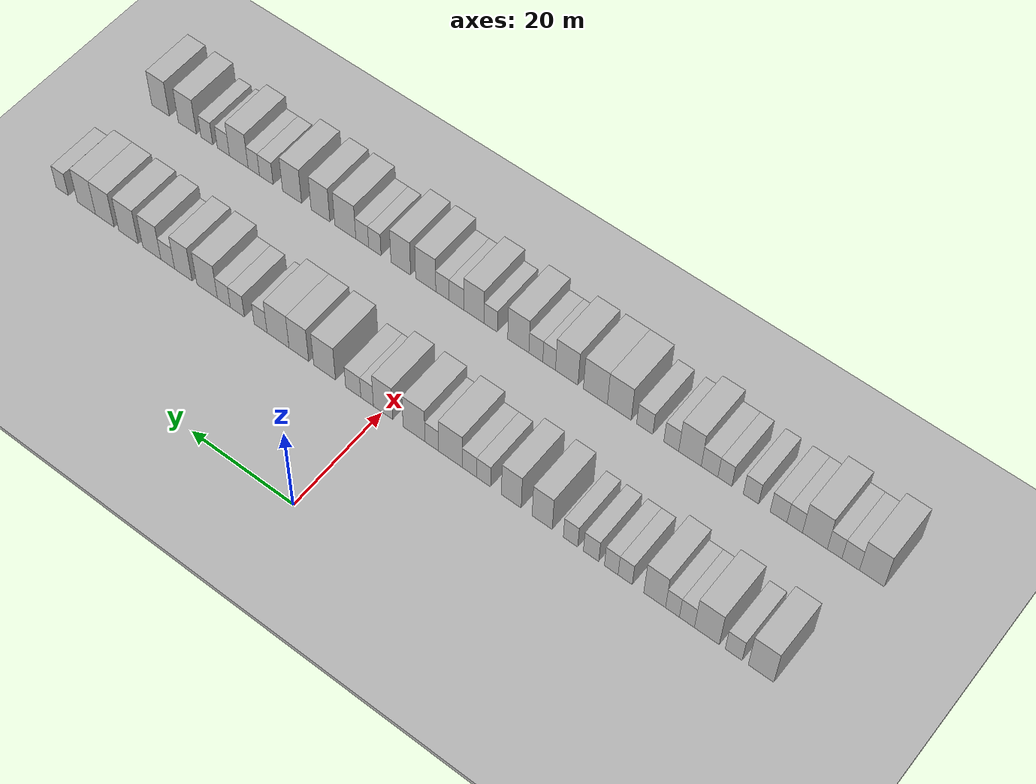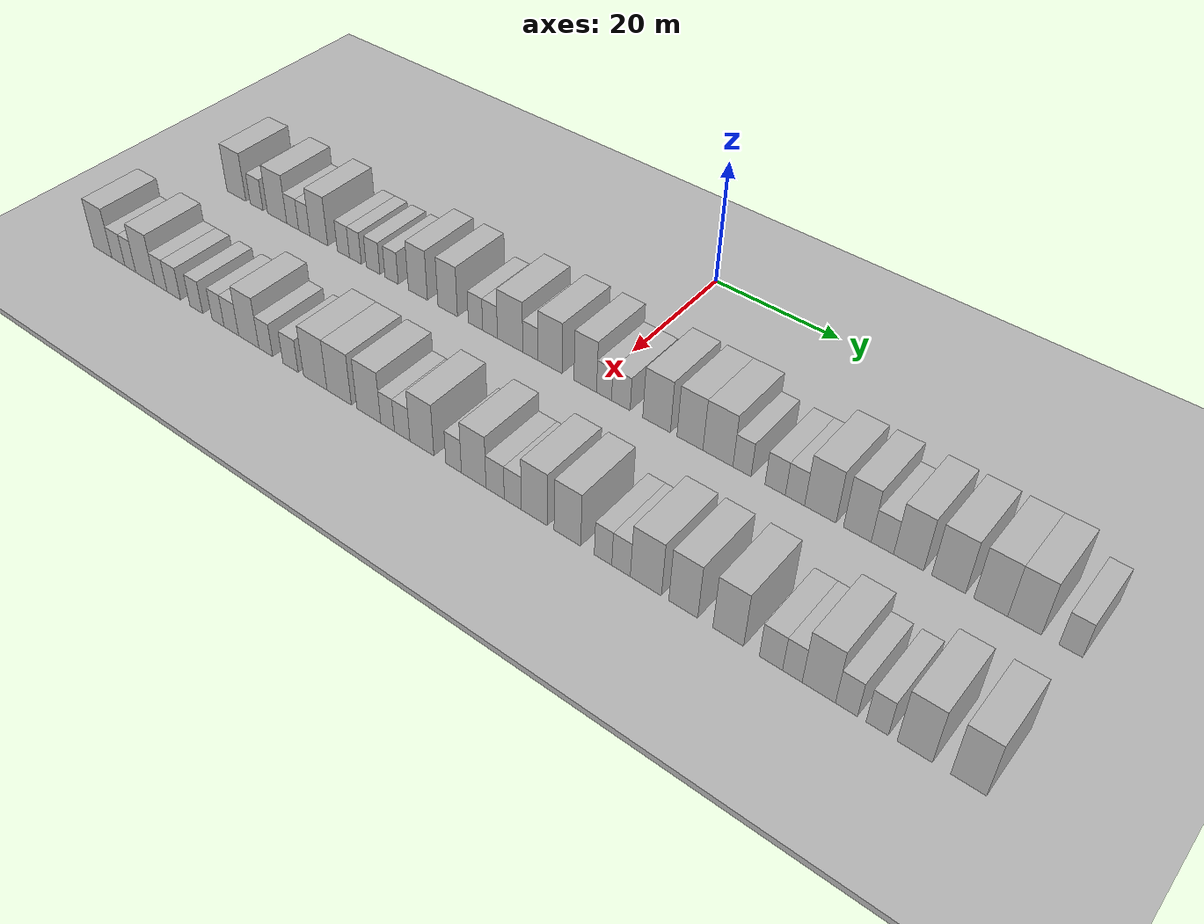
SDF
<sdf version="1.6">
 <world name="default">
  <include><name>ground_plane_1</name><uri>model://HANNAS_ground_plane</uri></include>
  <include>
   <name>ground_plane_2</name>
   <uri>model://HANNAS_ground_plane</uri>
   <pose>100 0 0  0 0 0</pose>
  </include>
  <model name="building_36">
   <static>1</static>
   <pose>25.0000 -68.3680 0 0.000000 0.000000 0.000000</pose>
   <link name="link">
    <pose>0 0 4.50 0 0 0</pose>
    <collision name="collision"><geometry><box><size>10.0000 4.2962 9.0000</size></box></geometry></collision>
    <visual name="visual">
     <cast_shadows>0</cast_shadows>
     <geometry><box><size>10.0000 4.2962 9.0000</size></box></geometry>
     <material>
      <script>
       <uri>model://HANNAS_wall/materials/scripts</uri>
       <uri>model://HANNAS_wall/materials/textures</uri>
       <name>vrc/HANNAS_wall</name>
      </script>
     </material>
    </visual>
   </link>
  </model>
  <model name="building_37">
   <static>1</static>
   <pose>25.0000 -63.7823 0 0.000000 0.000000 0.000000</pose>
   <link name="link">
    <pose>0 0 3.00 0 0 0</pose>
    <collision name="collision"><geometry><box><size>10.0000 2.8752 6.0000</size></box></geometry></collision>
    <visual name="visual">
     <cast_shadows>0</cast_shadows>
     <geometry><box><size>10.0000 2.8752 6.0000</size></box></geometry>
     <material>
      <script>
       <uri>model://HANNAS_wall/materials/scripts</uri>
       <uri>model://HANNAS_wall/materials/textures</uri>
       <name>vrc/HANNAS_wall</name>
      </script>
     </material>
    </visual>
   </link>
  </model>
  <model name="building_38">
   <static>1</static>
   <pose>25.0000 -59.2195 0 0.000000 0.000000 0.000000</pose>
   <link name="link">
    <pose>0 0 4.50 0 0 0</pose>
    <collision name="collision"><geometry><box><size>10.0000 4.2504 9.0000</size></box></geometry></collision>
    <visual name="visual">
     <cast_shadows>0</cast_shadows>
     <geometry><box><size>10.0000 4.2504 9.0000</size></box></geometry>
     <material>
      <script>
       <uri>model://HANNAS_wall/materials/scripts</uri>
       <uri>model://HANNAS_wall/materials/textures</uri>
       <name>vrc/HANNAS_wall</name>
      </script>
     </material>
    </visual>
   </link>
  </model>
  <model name="building_39">
   <static>1</static>
   <pose>25.0000 -55.8036 0 0.000000 0.000000 0.000000</pose>
   <link name="link">
    <pose>0 0 3.00 0 0 0</pose>
    <collision name="collision"><geometry><box><size>10.0000 2.5814 6.0000</size></box></geometry></collision>
    <visual name="visual">
     <cast_shadows>0</cast_shadows>
     <geometry><box><size>10.0000 2.5814 6.0000</size></box></geometry>
     <material>
      <script>
       <uri>model://HANNAS_wall/materials/scripts</uri>
       <uri>model://HANNAS_wall/materials/textures</uri>
       <name>vrc/HANNAS_wall</name>
      </script>
     </material>
    </visual>
   </link>
  </model>
  <model name="building_40">
   <static>1</static>
   <pose>25.0000 -53.3108 0 0.000000 0.000000 0.000000</pose>
   <link name="link">
    <pose>0 0 3.00 0 0 0</pose>
    <collision name="collision"><geometry><box><size>10.0000 2.4042 6.0000</size></box></geometry></collision>
    <visual name="visual">
     <cast_shadows>0</cast_shadows>
     <geometry><box><size>10.0000 2.4042 6.0000</size></box></geometry>
     <material>
      <script>
       <uri>model://HANNAS_wall/materials/scripts</uri>
       <uri>model://HANNAS_wall/materials/textures</uri>
       <name>vrc/HANNAS_wall</name>
      </script>
     </material>
    </visual>
   </link>
  </model>
  <model name="building_41">
   <static>1</static>
   <pose>25.0000 -50.2154 0 0.000000 0.000000 0.000000</pose>
   <link name="link">
    <pose>0 0 4.50 0 0 0</pose>
    <collision name="collision"><geometry><box><size>10.0000 3.7865 9.0000</size></box></geometry></collision>
    <visual name="visual">
     <cast_shadows>0</cast_shadows>
     <geometry><box><size>10.0000 3.7865 9.0000</size></box></geometry>
     <material>
      <script>
       <uri>model://HANNAS_wall/materials/scripts</uri>
       <uri>model://HANNAS_wall/materials/textures</uri>
       <name>vrc/HANNAS_wall</name>
      </script>
     </material>
    </visual>
   </link>
  </model>
  <model name="building_42">
   <static>1</static>
   <pose>25.0000 -45.0724 0 0.000000 0.000000 0.000000</pose>
   <link name="link">
    <pose>0 0 3.00 0 0 0</pose>
    <collision name="collision"><geometry><box><size>10.0000 2.4994 6.0000</size></box></geometry></collision>
    <visual name="visual">
     <cast_shadows>0</cast_shadows>
     <geometry><box><size>10.0000 2.4994 6.0000</size></box></geometry>
     <material>
      <script>
       <uri>model://HANNAS_wall/materials/scripts</uri>
       <uri>model://HANNAS_wall/materials/textures</uri>
       <name>vrc/HANNAS_wall</name>
      </script>
     </material>
    </visual>
   </link>
  </model>
  <model name="building_43">
   <static>1</static>
   <pose>25.0000 -42.6080 0 0.000000 0.000000 0.000000</pose>
   <link name="link">
    <pose>0 0 3.00 0 0 0</pose>
    <collision name="collision"><geometry><box><size>10.0000 2.4295 6.0000</size></box></geometry></collision>
    <visual name="visual">
     <cast_shadows>0</cast_shadows>
     <geometry><box><size>10.0000 2.4295 6.0000</size></box></geometry>
     <material>
      <script>
       <uri>model://HANNAS_wall/materials/scripts</uri>
       <uri>model://HANNAS_wall/materials/textures</uri>
       <name>vrc/HANNAS_wall</name>
      </script>
     </material>
    </visual>
   </link>
  </model>
  <model name="building_44">
   <static>1</static>
   <pose>25.0000 -39.0224 0 0.000000 0.000000 0.000000</pose>
   <link name="link">
    <pose>0 0 3.00 0 0 0</pose>
    <collision name="collision"><geometry><box><size>10.0000 2.7417 6.0000</size></box></geometry></collision>
    <visual name="visual">
     <cast_shadows>0</cast_shadows>
     <geometry><box><size>10.0000 2.7417 6.0000</size></box></geometry>
     <material>
      <script>
       <uri>model://HANNAS_wall/materials/scripts</uri>
       <uri>model://HANNAS_wall/materials/textures</uri>
       <name>vrc/HANNAS_wall</name>
      </script>
     </material>
    </visual>
   </link>
  </model>
  <model name="building_45">
   <static>1</static>
   <pose>25.0000 -35.3522 0 0.000000 0.000000 0.000000</pose>
   <link name="link">
    <pose>0 0 3.00 0 0 0</pose>
    <collision name="collision"><geometry><box><size>10.0000 2.5987 6.0000</size></box></geometry></collision>
    <visual name="visual">
     <cast_shadows>0</cast_shadows>
     <geometry><box><size>10.0000 2.5987 6.0000</size></box></geometry>
     <material>
      <script>
       <uri>model://HANNAS_wall/materials/scripts</uri>
       <uri>model://HANNAS_wall/materials/textures</uri>
       <name>vrc/HANNAS_wall</name>
      </script>
     </material>
    </visual>
   </link>
  </model>
  <model name="building_46">
   <static>1</static>
   <pose>25.0000 -30.2233 0 0.000000 0.000000 0.000000</pose>
   <link name="link">
    <pose>0 0 4.50 0 0 0</pose>
    <collision name="collision"><geometry><box><size>10.0000 3.6590 9.0000</size></box></geometry></collision>
    <visual name="visual">
     <cast_shadows>0</cast_shadows>
     <geometry><box><size>10.0000 3.6590 9.0000</size></box></geometry>
     <material>
      <script>
       <uri>model://HANNAS_wall/materials/scripts</uri>
       <uri>model://HANNAS_wall/materials/textures</uri>
       <name>vrc/HANNAS_wall</name>
      </script>
     </material>
    </visual>
   </link>
  </model>
  <model name="building_47">
   <static>1</static>
   <pose>25.0000 -24.5696 0 0.000000 0.000000 0.000000</pose>
   <link name="link">
    <pose>0 0 4.50 0 0 0</pose>
    <collision name="collision"><geometry><box><size>10.0000 3.6484 9.0000</size></box></geometry></collision>
    <visual name="visual">
     <cast_shadows>0</cast_shadows>
     <geometry><box><size>10.0000 3.6484 9.0000</size></box></geometry>
     <material>
      <script>
       <uri>model://HANNAS_wall/materials/scripts</uri>
       <uri>model://HANNAS_wall/materials/textures</uri>
       <name>vrc/HANNAS_wall</name>
      </script>
     </material>
    </visual>
   </link>
  </model>
  <model name="building_48">
   <static>1</static>
   <pose>25.0000 -19.4353 0 0.000000 0.000000 0.000000</pose>
   <link name="link">
    <pose>0 0 3.00 0 0 0</pose>
    <collision name="collision"><geometry><box><size>10.0000 2.6203 6.0000</size></box></geometry></collision>
    <visual name="visual">
     <cast_shadows>0</cast_shadows>
     <geometry><box><size>10.0000 2.6203 6.0000</size></box></geometry>
     <material>
      <script>
       <uri>model://HANNAS_wall/materials/scripts</uri>
       <uri>model://HANNAS_wall/materials/textures</uri>
       <name>vrc/HANNAS_wall</name>
      </script>
     </material>
    </visual>
   </link>
  </model>
  <model name="building_49">
   <static>1</static>
   <pose>25.0000 -16.7983 0 0.000000 0.000000 0.000000</pose>
   <link name="link">
    <pose>0 0 3.00 0 0 0</pose>
    <collision name="collision"><geometry><box><size>10.0000 2.6536 6.0000</size></box></geometry></collision>
    <visual name="visual">
     <cast_shadows>0</cast_shadows>
     <geometry><box><size>10.0000 2.6536 6.0000</size></box></geometry>
     <material>
      <script>
       <uri>model://HANNAS_wall/materials/scripts</uri>
       <uri>model://HANNAS_wall/materials/textures</uri>
       <name>vrc/HANNAS_wall</name>
      </script>
     </material>
    </visual>
   </link>
  </model>
  <model name="building_50">
   <static>1</static>
   <pose>25.0000 -13.2360 0 0.000000 0.000000 0.000000</pose>
   <link name="link">
    <pose>0 0 4.50 0 0 0</pose>
    <collision name="collision"><geometry><box><size>10.0000 4.4709 9.0000</size></box></geometry></collision>
    <visual name="visual">
     <cast_shadows>0</cast_shadows>
     <geometry><box><size>10.0000 4.4709 9.0000</size></box></geometry>
     <material>
      <script>
       <uri>model://HANNAS_wall/materials/scripts</uri>
       <uri>model://HANNAS_wall/materials/textures</uri>
       <name>vrc/HANNAS_wall</name>
      </script>
     </material>
    </visual>
   </link>
  </model>
  <model name="building_51">
   <static>1</static>
   <pose>25.0000 -9.7139 0 0.000000 0.000000 0.000000</pose>
   <link name="link">
    <pose>0 0 3.00 0 0 0</pose>
    <collision name="collision"><geometry><box><size>10.0000 2.5732 6.0000</size></box></geometry></collision>
    <visual name="visual">
     <cast_shadows>0</cast_shadows>
     <geometry><box><size>10.0000 2.5732 6.0000</size></box></geometry>
     <material>
      <script>
       <uri>model://HANNAS_wall/materials/scripts</uri>
       <uri>model://HANNAS_wall/materials/textures</uri>
       <name>vrc/HANNAS_wall</name>
      </script>
     </material>
    </visual>
   </link>
  </model>
  <model name="building_52">
   <static>1</static>
   <pose>25.0000 -6.3271 0 0.000000 0.000000 0.000000</pose>
   <link name="link">
    <pose>0 0 4.50 0 0 0</pose>
    <collision name="collision"><geometry><box><size>10.0000 4.2004 9.0000</size></box></geometry></collision>
    <visual name="visual">
     <cast_shadows>0</cast_shadows>
     <geometry><box><size>10.0000 4.2004 9.0000</size></box></geometry>
     <material>
      <script>
       <uri>model://HANNAS_wall/materials/scripts</uri>
       <uri>model://HANNAS_wall/materials/textures</uri>
       <name>vrc/HANNAS_wall</name>
      </script>
     </material>
    </visual>
   </link>
  </model>
  <model name="building_53">
   <static>1</static>
   <pose>25.0000 -0.3567 0 0.000000 0.000000 0.000000</pose>
   <link name="link">
    <pose>0 0 4.50 0 0 0</pose>
    <collision name="collision"><geometry><box><size>10.0000 3.7404 9.0000</size></box></geometry></collision>
    <visual name="visual">
     <cast_shadows>0</cast_shadows>
     <geometry><box><size>10.0000 3.7404 9.0000</size></box></geometry>
     <material>
      <script>
       <uri>model://HANNAS_wall/materials/scripts</uri>
       <uri>model://HANNAS_wall/materials/textures</uri>
       <name>vrc/HANNAS_wall</name>
      </script>
     </material>
    </visual>
   </link>
  </model>
  <model name="building_54">
   <static>1</static>
   <pose>25.0000 2.7380 0 0.000000 0.000000 0.000000</pose>
   <link name="link">
    <pose>0 0 3.00 0 0 0</pose>
    <collision name="collision"><geometry><box><size>10.0000 2.4489 6.0000</size></box></geometry></collision>
    <visual name="visual">
     <cast_shadows>0</cast_shadows>
     <geometry><box><size>10.0000 2.4489 6.0000</size></box></geometry>
     <material>
      <script>
       <uri>model://HANNAS_wall/materials/scripts</uri>
       <uri>model://HANNAS_wall/materials/textures</uri>
       <name>vrc/HANNAS_wall</name>
      </script>
     </material>
    </visual>
   </link>
  </model>
  <model name="building_55">
   <static>1</static>
   <pose>25.0000 5.4598 0 0.000000 0.000000 0.000000</pose>
   <link name="link">
    <pose>0 0 3.00 0 0 0</pose>
    <collision name="collision"><geometry><box><size>10.0000 2.9948 6.0000</size></box></geometry></collision>
    <visual name="visual">
     <cast_shadows>0</cast_shadows>
     <geometry><box><size>10.0000 2.9948 6.0000</size></box></geometry>
     <material>
      <script>
       <uri>model://HANNAS_wall/materials/scripts</uri>
       <uri>model://HANNAS_wall/materials/textures</uri>
       <name>vrc/HANNAS_wall</name>
      </script>
     </material>
    </visual>
   </link>
  </model>
  <model name="building_56">
   <static>1</static>
   <pose>25.0000 11.1160 0 0.000000 0.000000 0.000000</pose>
   <link name="link">
    <pose>0 0 4.50 0 0 0</pose>
    <collision name="collision"><geometry><box><size>10.0000 4.3177 9.0000</size></box></geometry></collision>
    <visual name="visual">
     <cast_shadows>0</cast_shadows>
     <geometry><box><size>10.0000 4.3177 9.0000</size></box></geometry>
     <material>
      <script>
       <uri>model://HANNAS_wall/materials/scripts</uri>
       <uri>model://HANNAS_wall/materials/textures</uri>
       <name>vrc/HANNAS_wall</name>
      </script>
     </material>
    </visual>
   </link>
  </model>
  <model name="building_57">
   <static>1</static>
   <pose>25.0000 16.2478 0 0.000000 0.000000 0.000000</pose>
   <link name="link">
    <pose>0 0 4.50 0 0 0</pose>
    <collision name="collision"><geometry><box><size>10.0000 3.9459 9.0000</size></box></geometry></collision>
    <visual name="visual">
     <cast_shadows>0</cast_shadows>
     <geometry><box><size>10.0000 3.9459 9.0000</size></box></geometry>
     <material>
      <script>
       <uri>model://HANNAS_wall/materials/scripts</uri>
       <uri>model://HANNAS_wall/materials/textures</uri>
       <name>vrc/HANNAS_wall</name>
      </script>
     </material>
    </visual>
   </link>
  </model>
  <model name="building_58">
   <static>1</static>
   <pose>25.0000 20.4501 0 0.000000 0.000000 0.000000</pose>
   <link name="link">
    <pose>0 0 4.50 0 0 0</pose>
    <collision name="collision"><geometry><box><size>10.0000 4.4586 9.0000</size></box></geometry></collision>
    <visual name="visual">
     <cast_shadows>0</cast_shadows>
     <geometry><box><size>10.0000 4.4586 9.0000</size></box></geometry>
     <material>
      <script>
       <uri>model://HANNAS_wall/materials/scripts</uri>
       <uri>model://HANNAS_wall/materials/textures</uri>
       <name>vrc/HANNAS_wall</name>
      </script>
     </material>
    </visual>
   </link>
  </model>
  <model name="building_59">
   <static>1</static>
   <pose>25.0000 23.9965 0 0.000000 0.000000 0.000000</pose>
   <link name="link">
    <pose>0 0 3.00 0 0 0</pose>
    <collision name="collision"><geometry><box><size>10.0000 2.6342 6.0000</size></box></geometry></collision>
    <visual name="visual">
     <cast_shadows>0</cast_shadows>
     <geometry><box><size>10.0000 2.6342 6.0000</size></box></geometry>
     <material>
      <script>
       <uri>model://HANNAS_wall/materials/scripts</uri>
       <uri>model://HANNAS_wall/materials/textures</uri>
       <name>vrc/HANNAS_wall</name>
      </script>
     </material>
    </visual>
   </link>
  </model>
  <model name="building_60">
   <static>1</static>
   <pose>25.0000 28.7550 0 0.000000 0.000000 0.000000</pose>
   <link name="link">
    <pose>0 0 3.00 0 0 0</pose>
    <collision name="collision"><geometry><box><size>10.0000 2.8829 6.0000</size></box></geometry></collision>
    <visual name="visual">
     <cast_shadows>0</cast_shadows>
     <geometry><box><size>10.0000 2.8829 6.0000</size></box></geometry>
     <material>
      <script>
       <uri>model://HANNAS_wall/materials/scripts</uri>
       <uri>model://HANNAS_wall/materials/textures</uri>
       <name>vrc/HANNAS_wall</name>
      </script>
     </material>
    </visual>
   </link>
  </model>
  <model name="building_61">
   <static>1</static>
   <pose>25.0000 31.5401 0 0.000000 0.000000 0.000000</pose>
   <link name="link">
    <pose>0 0 3.00 0 0 0</pose>
    <collision name="collision"><geometry><box><size>10.0000 2.6871 6.0000</size></box></geometry></collision>
    <visual name="visual">
     <cast_shadows>0</cast_shadows>
     <geometry><box><size>10.0000 2.6871 6.0000</size></box></geometry>
     <material>
      <script>
       <uri>model://HANNAS_wall/materials/scripts</uri>
       <uri>model://HANNAS_wall/materials/textures</uri>
       <name>vrc/HANNAS_wall</name>
      </script>
     </material>
    </visual>
   </link>
  </model>
  <model name="building_62">
   <static>1</static>
   <pose>25.0000 35.0346 0 0.000000 0.000000 0.000000</pose>
   <link name="link">
    <pose>0 0 4.50 0 0 0</pose>
    <collision name="collision"><geometry><box><size>10.0000 4.3019 9.0000</size></box></geometry></collision>
    <visual name="visual">
     <cast_shadows>0</cast_shadows>
     <geometry><box><size>10.0000 4.3019 9.0000</size></box></geometry>
     <material>
      <script>
       <uri>model://HANNAS_wall/materials/scripts</uri>
       <uri>model://HANNAS_wall/materials/textures</uri>
       <name>vrc/HANNAS_wall</name>
      </script>
     </material>
    </visual>
   </link>
  </model>
  <model name="building_63">
   <static>1</static>
   <pose>25.0000 40.0273 0 0.000000 0.000000 0.000000</pose>
   <link name="link">
    <pose>0 0 4.50 0 0 0</pose>
    <collision name="collision"><geometry><box><size>10.0000 3.6837 9.0000</size></box></geometry></collision>
    <visual name="visual">
     <cast_shadows>0</cast_shadows>
     <geometry><box><size>10.0000 3.6837 9.0000</size></box></geometry>
     <material>
      <script>
       <uri>model://HANNAS_wall/materials/scripts</uri>
       <uri>model://HANNAS_wall/materials/textures</uri>
       <name>vrc/HANNAS_wall</name>
      </script>
     </material>
    </visual>
   </link>
  </model>
  <model name="building_64">
   <static>1</static>
   <pose>25.0000 43.3307 0 0.000000 0.000000 0.000000</pose>
   <link name="link">
    <pose>0 0 3.00 0 0 0</pose>
    <collision name="collision"><geometry><box><size>10.0000 2.9231 6.0000</size></box></geometry></collision>
    <visual name="visual">
     <cast_shadows>0</cast_shadows>
     <geometry><box><size>10.0000 2.9231 6.0000</size></box></geometry>
     <material>
      <script>
       <uri>model://HANNAS_wall/materials/scripts</uri>
       <uri>model://HANNAS_wall/materials/textures</uri>
       <name>vrc/HANNAS_wall</name>
      </script>
     </material>
    </visual>
   </link>
  </model>
  <model name="building_65">
   <static>1</static>
   <pose>25.0000 46.7132 0 0.000000 0.000000 0.000000</pose>
   <link name="link">
    <pose>0 0 4.50 0 0 0</pose>
    <collision name="collision"><geometry><box><size>10.0000 3.8419 9.0000</size></box></geometry></collision>
    <visual name="visual">
     <cast_shadows>0</cast_shadows>
     <geometry><box><size>10.0000 3.8419 9.0000</size></box></geometry>
     <material>
      <script>
       <uri>model://HANNAS_wall/materials/scripts</uri>
       <uri>model://HANNAS_wall/materials/textures</uri>
       <name>vrc/HANNAS_wall</name>
      </script>
     </material>
    </visual>
   </link>
  </model>
  <model name="building_66">
   <static>1</static>
   <pose>25.0000 51.7370 0 0.000000 0.000000 0.000000</pose>
   <link name="link">
    <pose>0 0 4.50 0 0 0</pose>
    <collision name="collision"><geometry><box><size>10.0000 4.2055 9.0000</size></box></geometry></collision>
    <visual name="visual">
     <cast_shadows>0</cast_shadows>
     <geometry><box><size>10.0000 4.2055 9.0000</size></box></geometry>
     <material>
      <script>
       <uri>model://HANNAS_wall/materials/scripts</uri>
       <uri>model://HANNAS_wall/materials/textures</uri>
       <name>vrc/HANNAS_wall</name>
      </script>
     </material>
    </visual>
   </link>
  </model>
  <model name="building_67">
   <static>1</static>
   <pose>25.0000 56.8810 0 0.000000 0.000000 0.000000</pose>
   <link name="link">
    <pose>0 0 4.50 0 0 0</pose>
    <collision name="collision"><geometry><box><size>10.0000 4.0826 9.0000</size></box></geometry></collision>
    <visual name="visual">
     <cast_shadows>0</cast_shadows>
     <geometry><box><size>10.0000 4.0826 9.0000</size></box></geometry>
     <material>
      <script>
       <uri>model://HANNAS_wall/materials/scripts</uri>
       <uri>model://HANNAS_wall/materials/textures</uri>
       <name>vrc/HANNAS_wall</name>
      </script>
     </material>
    </visual>
   </link>
  </model>
  <model name="building_68">
   <static>1</static>
   <pose>25.0000 60.9062 0 0.000000 0.000000 0.000000</pose>
   <link name="link">
    <pose>0 0 4.50 0 0 0</pose>
    <collision name="collision"><geometry><box><size>10.0000 3.9676 9.0000</size></box></geometry></collision>
    <visual name="visual">
     <cast_shadows>0</cast_shadows>
     <geometry><box><size>10.0000 3.9676 9.0000</size></box></geometry>
     <material>
      <script>
       <uri>model://HANNAS_wall/materials/scripts</uri>
       <uri>model://HANNAS_wall/materials/textures</uri>
       <name>vrc/HANNAS_wall</name>
      </script>
     </material>
    </visual>
   </link>
  </model>
  <model name="building_69">
   <static>1</static>
   <pose>25.0000 66.2493 0 0.000000 0.000000 0.000000</pose>
   <link name="link">
    <pose>0 0 3.00 0 0 0</pose>
    <collision name="collision"><geometry><box><size>10.0000 2.7186 6.0000</size></box></geometry></collision>
    <visual name="visual">
     <cast_shadows>0</cast_shadows>
     <geometry><box><size>10.0000 2.7186 6.0000</size></box></geometry>
     <material>
      <script>
       <uri>model://HANNAS_wall/materials/scripts</uri>
       <uri>model://HANNAS_wall/materials/textures</uri>
       <name>vrc/HANNAS_wall</name>
      </script>
     </material>
    </visual>
   </link>
  </model>
  <model name="building_140">
   <static>1</static>
   <pose>47.0000 -72.4310 0 0.000000 0.000000 0.000000</pose>
   <link name="link">
    <pose>0 0 4.50 0 0 0</pose>
    <collision name="collision"><geometry><box><size>10.0000 4.2090 9.0000</size></box></geometry></collision>
    <visual name="visual">
     <cast_shadows>0</cast_shadows>
     <geometry><box><size>10.0000 4.2090 9.0000</size></box></geometry>
     <material>
      <script>
       <uri>model://HANNAS_wall/materials/scripts</uri>
       <uri>model://HANNAS_wall/materials/textures</uri>
       <name>vrc/HANNAS_wall</name>
      </script>
     </material>
    </visual>
   </link>
  </model>
  <model name="building_141">
   <static>1</static>
   <pose>47.0000 -68.8435 0 0.000000 0.000000 0.000000</pose>
   <link name="link">
    <pose>0 0 3.00 0 0 0</pose>
    <collision name="collision"><geometry><box><size>10.0000 2.9662 6.0000</size></box></geometry></collision>
    <visual name="visual">
     <cast_shadows>0</cast_shadows>
     <geometry><box><size>10.0000 2.9662 6.0000</size></box></geometry>
     <material>
      <script>
       <uri>model://HANNAS_wall/materials/scripts</uri>
       <uri>model://HANNAS_wall/materials/textures</uri>
       <name>vrc/HANNAS_wall</name>
      </script>
     </material>
    </visual>
   </link>
  </model>
  <model name="building_142">
   <static>1</static>
   <pose>47.0000 -66.1214 0 0.000000 0.000000 0.000000</pose>
   <link name="link">
    <pose>0 0 3.00 0 0 0</pose>
    <collision name="collision"><geometry><box><size>10.0000 2.4778 6.0000</size></box></geometry></collision>
    <visual name="visual">
     <cast_shadows>0</cast_shadows>
     <geometry><box><size>10.0000 2.4778 6.0000</size></box></geometry>
     <material>
      <script>
       <uri>model://HANNAS_wall/materials/scripts</uri>
       <uri>model://HANNAS_wall/materials/textures</uri>
       <name>vrc/HANNAS_wall</name>
      </script>
     </material>
    </visual>
   </link>
  </model>
  <model name="building_143">
   <static>1</static>
   <pose>47.0000 -62.7457 0 0.000000 0.000000 0.000000</pose>
   <link name="link">
    <pose>0 0 4.50 0 0 0</pose>
    <collision name="collision"><geometry><box><size>10.0000 4.2736 9.0000</size></box></geometry></collision>
    <visual name="visual">
     <cast_shadows>0</cast_shadows>
     <geometry><box><size>10.0000 4.2736 9.0000</size></box></geometry>
     <material>
      <script>
       <uri>model://HANNAS_wall/materials/scripts</uri>
       <uri>model://HANNAS_wall/materials/textures</uri>
       <name>vrc/HANNAS_wall</name>
      </script>
     </material>
    </visual>
   </link>
  </model>
  <model name="building_144">
   <static>1</static>
   <pose>47.0000 -59.2666 0 0.000000 0.000000 0.000000</pose>
   <link name="link">
    <pose>0 0 3.00 0 0 0</pose>
    <collision name="collision"><geometry><box><size>10.0000 2.6847 6.0000</size></box></geometry></collision>
    <visual name="visual">
     <cast_shadows>0</cast_shadows>
     <geometry><box><size>10.0000 2.6847 6.0000</size></box></geometry>
     <material>
      <script>
       <uri>model://HANNAS_wall/materials/scripts</uri>
       <uri>model://HANNAS_wall/materials/textures</uri>
       <name>vrc/HANNAS_wall</name>
      </script>
     </material>
    </visual>
   </link>
  </model>
  <model name="building_145">
   <static>1</static>
   <pose>47.0000 -56.4655 0 0.000000 0.000000 0.000000</pose>
   <link name="link">
    <pose>0 0 3.00 0 0 0</pose>
    <collision name="collision"><geometry><box><size>10.0000 2.9173 6.0000</size></box></geometry></collision>
    <visual name="visual">
     <cast_shadows>0</cast_shadows>
     <geometry><box><size>10.0000 2.9173 6.0000</size></box></geometry>
     <material>
      <script>
       <uri>model://HANNAS_wall/materials/scripts</uri>
       <uri>model://HANNAS_wall/materials/textures</uri>
       <name>vrc/HANNAS_wall</name>
      </script>
     </material>
    </visual>
   </link>
  </model>
  <model name="building_146">
   <static>1</static>
   <pose>47.0000 -51.6478 0 0.000000 0.000000 0.000000</pose>
   <link name="link">
    <pose>0 0 3.00 0 0 0</pose>
    <collision name="collision"><geometry><box><size>10.0000 2.7182 6.0000</size></box></geometry></collision>
    <visual name="visual">
     <cast_shadows>0</cast_shadows>
     <geometry><box><size>10.0000 2.7182 6.0000</size></box></geometry>
     <material>
      <script>
       <uri>model://HANNAS_wall/materials/scripts</uri>
       <uri>model://HANNAS_wall/materials/textures</uri>
       <name>vrc/HANNAS_wall</name>
      </script>
     </material>
    </visual>
   </link>
  </model>
  <model name="building_147">
   <static>1</static>
   <pose>47.0000 -47.0475 0 0.000000 0.000000 0.000000</pose>
   <link name="link">
    <pose>0 0 3.00 0 0 0</pose>
    <collision name="collision"><geometry><box><size>10.0000 2.4825 6.0000</size></box></geometry></collision>
    <visual name="visual">
     <cast_shadows>0</cast_shadows>
     <geometry><box><size>10.0000 2.4825 6.0000</size></box></geometry>
     <material>
      <script>
       <uri>model://HANNAS_wall/materials/scripts</uri>
       <uri>model://HANNAS_wall/materials/textures</uri>
       <name>vrc/HANNAS_wall</name>
      </script>
     </material>
    </visual>
   </link>
  </model>
  <model name="building_148">
   <static>1</static>
   <pose>47.0000 -44.3206 0 0.000000 0.000000 0.000000</pose>
   <link name="link">
    <pose>0 0 3.00 0 0 0</pose>
    <collision name="collision"><geometry><box><size>10.0000 2.9713 6.0000</size></box></geometry></collision>
    <visual name="visual">
     <cast_shadows>0</cast_shadows>
     <geometry><box><size>10.0000 2.9713 6.0000</size></box></geometry>
     <material>
      <script>
       <uri>model://HANNAS_wall/materials/scripts</uri>
       <uri>model://HANNAS_wall/materials/textures</uri>
       <name>vrc/HANNAS_wall</name>
      </script>
     </material>
    </visual>
   </link>
  </model>
  <model name="building_149">
   <static>1</static>
   <pose>47.0000 -40.8038 0 0.000000 0.000000 0.000000</pose>
   <link name="link">
    <pose>0 0 4.50 0 0 0</pose>
    <collision name="collision"><geometry><box><size>10.0000 4.0621 9.0000</size></box></geometry></collision>
    <visual name="visual">
     <cast_shadows>0</cast_shadows>
     <geometry><box><size>10.0000 4.0621 9.0000</size></box></geometry>
     <material>
      <script>
       <uri>model://HANNAS_wall/materials/scripts</uri>
       <uri>model://HANNAS_wall/materials/textures</uri>
       <name>vrc/HANNAS_wall</name>
      </script>
     </material>
    </visual>
   </link>
  </model>
  <model name="building_150">
   <static>1</static>
   <pose>47.0000 -37.4194 0 0.000000 0.000000 0.000000</pose>
   <link name="link">
    <pose>0 0 3.00 0 0 0</pose>
    <collision name="collision"><geometry><box><size>10.0000 2.7069 6.0000</size></box></geometry></collision>
    <visual name="visual">
     <cast_shadows>0</cast_shadows>
     <geometry><box><size>10.0000 2.7069 6.0000</size></box></geometry>
     <material>
      <script>
       <uri>model://HANNAS_wall/materials/scripts</uri>
       <uri>model://HANNAS_wall/materials/textures</uri>
       <name>vrc/HANNAS_wall</name>
      </script>
     </material>
    </visual>
   </link>
  </model>
  <model name="building_151">
   <static>1</static>
   <pose>47.0000 -32.5839 0 0.000000 0.000000 0.000000</pose>
   <link name="link">
    <pose>0 0 3.00 0 0 0</pose>
    <collision name="collision"><geometry><box><size>10.0000 2.9641 6.0000</size></box></geometry></collision>
    <visual name="visual">
     <cast_shadows>0</cast_shadows>
     <geometry><box><size>10.0000 2.9641 6.0000</size></box></geometry>
     <material>
      <script>
       <uri>model://HANNAS_wall/materials/scripts</uri>
       <uri>model://HANNAS_wall/materials/textures</uri>
       <name>vrc/HANNAS_wall</name>
      </script>
     </material>
    </visual>
   </link>
  </model>
  <model name="building_152">
   <static>1</static>
   <pose>47.0000 -27.8940 0 0.000000 0.000000 0.000000</pose>
   <link name="link">
    <pose>0 0 4.50 0 0 0</pose>
    <collision name="collision"><geometry><box><size>10.0000 4.4157 9.0000</size></box></geometry></collision>
    <visual name="visual">
     <cast_shadows>0</cast_shadows>
     <geometry><box><size>10.0000 4.4157 9.0000</size></box></geometry>
     <material>
      <script>
       <uri>model://HANNAS_wall/materials/scripts</uri>
       <uri>model://HANNAS_wall/materials/textures</uri>
       <name>vrc/HANNAS_wall</name>
      </script>
     </material>
    </visual>
   </link>
  </model>
  <model name="building_153">
   <static>1</static>
   <pose>47.0000 -23.4443 0 0.000000 0.000000 0.000000</pose>
   <link name="link">
    <pose>0 0 4.50 0 0 0</pose>
    <collision name="collision"><geometry><box><size>10.0000 4.4837 9.0000</size></box></geometry></collision>
    <visual name="visual">
     <cast_shadows>0</cast_shadows>
     <geometry><box><size>10.0000 4.4837 9.0000</size></box></geometry>
     <material>
      <script>
       <uri>model://HANNAS_wall/materials/scripts</uri>
       <uri>model://HANNAS_wall/materials/textures</uri>
       <name>vrc/HANNAS_wall</name>
      </script>
     </material>
    </visual>
   </link>
  </model>
  <model name="building_154">
   <static>1</static>
   <pose>47.0000 -18.0710 0 0.000000 0.000000 0.000000</pose>
   <link name="link">
    <pose>0 0 4.50 0 0 0</pose>
    <collision name="collision"><geometry><box><size>10.0000 4.2629 9.0000</size></box></geometry></collision>
    <visual name="visual">
     <cast_shadows>0</cast_shadows>
     <geometry><box><size>10.0000 4.2629 9.0000</size></box></geometry>
     <material>
      <script>
       <uri>model://HANNAS_wall/materials/scripts</uri>
       <uri>model://HANNAS_wall/materials/textures</uri>
       <name>vrc/HANNAS_wall</name>
      </script>
     </material>
    </visual>
   </link>
  </model>
  <model name="building_155">
   <static>1</static>
   <pose>47.0000 -14.7368 0 0.000000 0.000000 0.000000</pose>
   <link name="link">
    <pose>0 0 3.00 0 0 0</pose>
    <collision name="collision"><geometry><box><size>10.0000 2.4055 6.0000</size></box></geometry></collision>
    <visual name="visual">
     <cast_shadows>0</cast_shadows>
     <geometry><box><size>10.0000 2.4055 6.0000</size></box></geometry>
     <material>
      <script>
       <uri>model://HANNAS_wall/materials/scripts</uri>
       <uri>model://HANNAS_wall/materials/textures</uri>
       <name>vrc/HANNAS_wall</name>
      </script>
     </material>
    </visual>
   </link>
  </model>
  <model name="building_156">
   <static>1</static>
   <pose>47.0000 -12.1998 0 0.000000 0.000000 0.000000</pose>
   <link name="link">
    <pose>0 0 3.00 0 0 0</pose>
    <collision name="collision"><geometry><box><size>10.0000 2.6687 6.0000</size></box></geometry></collision>
    <visual name="visual">
     <cast_shadows>0</cast_shadows>
     <geometry><box><size>10.0000 2.6687 6.0000</size></box></geometry>
     <material>
      <script>
       <uri>model://HANNAS_wall/materials/scripts</uri>
       <uri>model://HANNAS_wall/materials/textures</uri>
       <name>vrc/HANNAS_wall</name>
      </script>
     </material>
    </visual>
   </link>
  </model>
  <model name="building_157">
   <static>1</static>
   <pose>47.0000 -8.8295 0 0.000000 0.000000 0.000000</pose>
   <link name="link">
    <pose>0 0 4.50 0 0 0</pose>
    <collision name="collision"><geometry><box><size>10.0000 4.0719 9.0000</size></box></geometry></collision>
    <visual name="visual">
     <cast_shadows>0</cast_shadows>
     <geometry><box><size>10.0000 4.0719 9.0000</size></box></geometry>
     <material>
      <script>
       <uri>model://HANNAS_wall/materials/scripts</uri>
       <uri>model://HANNAS_wall/materials/textures</uri>
       <name>vrc/HANNAS_wall</name>
      </script>
     </material>
    </visual>
   </link>
  </model>
  <model name="building_158">
   <static>1</static>
   <pose>47.0000 -3.5095 0 0.000000 0.000000 0.000000</pose>
   <link name="link">
    <pose>0 0 3.00 0 0 0</pose>
    <collision name="collision"><geometry><box><size>10.0000 2.5681 6.0000</size></box></geometry></collision>
    <visual name="visual">
     <cast_shadows>0</cast_shadows>
     <geometry><box><size>10.0000 2.5681 6.0000</size></box></geometry>
     <material>
      <script>
       <uri>model://HANNAS_wall/materials/scripts</uri>
       <uri>model://HANNAS_wall/materials/textures</uri>
       <name>vrc/HANNAS_wall</name>
      </script>
     </material>
    </visual>
   </link>
  </model>
  <model name="building_159">
   <static>1</static>
   <pose>47.0000 -0.2346 0 0.000000 0.000000 0.000000</pose>
   <link name="link">
    <pose>0 0 4.50 0 0 0</pose>
    <collision name="collision"><geometry><box><size>10.0000 3.9817 9.0000</size></box></geometry></collision>
    <visual name="visual">
     <cast_shadows>0</cast_shadows>
     <geometry><box><size>10.0000 3.9817 9.0000</size></box></geometry>
     <material>
      <script>
       <uri>model://HANNAS_wall/materials/scripts</uri>
       <uri>model://HANNAS_wall/materials/textures</uri>
       <name>vrc/HANNAS_wall</name>
      </script>
     </material>
    </visual>
   </link>
  </model>
  <model name="building_160">
   <static>1</static>
   <pose>47.0000 3.2017 0 0.000000 0.000000 0.000000</pose>
   <link name="link">
    <pose>0 0 3.00 0 0 0</pose>
    <collision name="collision"><geometry><box><size>10.0000 2.8910 6.0000</size></box></geometry></collision>
    <visual name="visual">
     <cast_shadows>0</cast_shadows>
     <geometry><box><size>10.0000 2.8910 6.0000</size></box></geometry>
     <material>
      <script>
       <uri>model://HANNAS_wall/materials/scripts</uri>
       <uri>model://HANNAS_wall/materials/textures</uri>
       <name>vrc/HANNAS_wall</name>
      </script>
     </material>
    </visual>
   </link>
  </model>
  <model name="building_161">
   <static>1</static>
   <pose>47.0000 5.9708 0 0.000000 0.000000 0.000000</pose>
   <link name="link">
    <pose>0 0 3.00 0 0 0</pose>
    <collision name="collision"><geometry><box><size>10.0000 2.6470 6.0000</size></box></geometry></collision>
    <visual name="visual">
     <cast_shadows>0</cast_shadows>
     <geometry><box><size>10.0000 2.6470 6.0000</size></box></geometry>
     <material>
      <script>
       <uri>model://HANNAS_wall/materials/scripts</uri>
       <uri>model://HANNAS_wall/materials/textures</uri>
       <name>vrc/HANNAS_wall</name>
      </script>
     </material>
    </visual>
   </link>
  </model>
  <model name="building_162">
   <static>1</static>
   <pose>47.0000 9.3113 0 0.000000 0.000000 0.000000</pose>
   <link name="link">
    <pose>0 0 4.50 0 0 0</pose>
    <collision name="collision"><geometry><box><size>10.0000 4.0341 9.0000</size></box></geometry></collision>
    <visual name="visual">
     <cast_shadows>0</cast_shadows>
     <geometry><box><size>10.0000 4.0341 9.0000</size></box></geometry>
     <material>
      <script>
       <uri>model://HANNAS_wall/materials/scripts</uri>
       <uri>model://HANNAS_wall/materials/textures</uri>
       <name>vrc/HANNAS_wall</name>
      </script>
     </material>
    </visual>
   </link>
  </model>
  <model name="building_163">
   <static>1</static>
   <pose>47.0000 14.3152 0 0.000000 0.000000 0.000000</pose>
   <link name="link">
    <pose>0 0 4.50 0 0 0</pose>
    <collision name="collision"><geometry><box><size>10.0000 3.9737 9.0000</size></box></geometry></collision>
    <visual name="visual">
     <cast_shadows>0</cast_shadows>
     <geometry><box><size>10.0000 3.9737 9.0000</size></box></geometry>
     <material>
      <script>
       <uri>model://HANNAS_wall/materials/scripts</uri>
       <uri>model://HANNAS_wall/materials/textures</uri>
       <name>vrc/HANNAS_wall</name>
      </script>
     </material>
    </visual>
   </link>
  </model>
  <model name="building_164">
   <static>1</static>
   <pose>47.0000 19.5662 0 0.000000 0.000000 0.000000</pose>
   <link name="link">
    <pose>0 0 3.00 0 0 0</pose>
    <collision name="collision"><geometry><box><size>10.0000 2.5283 6.0000</size></box></geometry></collision>
    <visual name="visual">
     <cast_shadows>0</cast_shadows>
     <geometry><box><size>10.0000 2.5283 6.0000</size></box></geometry>
     <material>
      <script>
       <uri>model://HANNAS_wall/materials/scripts</uri>
       <uri>model://HANNAS_wall/materials/textures</uri>
       <name>vrc/HANNAS_wall</name>
      </script>
     </material>
    </visual>
   </link>
  </model>
  <model name="building_165">
   <static>1</static>
   <pose>47.0000 22.1505 0 0.000000 0.000000 0.000000</pose>
   <link name="link">
    <pose>0 0 3.00 0 0 0</pose>
    <collision name="collision"><geometry><box><size>10.0000 2.6402 6.0000</size></box></geometry></collision>
    <visual name="visual">
     <cast_shadows>0</cast_shadows>
     <geometry><box><size>10.0000 2.6402 6.0000</size></box></geometry>
     <material>
      <script>
       <uri>model://HANNAS_wall/materials/scripts</uri>
       <uri>model://HANNAS_wall/materials/textures</uri>
       <name>vrc/HANNAS_wall</name>
      </script>
     </material>
    </visual>
   </link>
  </model>
  <model name="building_166">
   <static>1</static>
   <pose>47.0000 25.6435 0 0.000000 0.000000 0.000000</pose>
   <link name="link">
    <pose>0 0 4.50 0 0 0</pose>
    <collision name="collision"><geometry><box><size>10.0000 4.3459 9.0000</size></box></geometry></collision>
    <visual name="visual">
     <cast_shadows>0</cast_shadows>
     <geometry><box><size>10.0000 4.3459 9.0000</size></box></geometry>
     <material>
      <script>
       <uri>model://HANNAS_wall/materials/scripts</uri>
       <uri>model://HANNAS_wall/materials/textures</uri>
       <name>vrc/HANNAS_wall</name>
      </script>
     </material>
    </visual>
   </link>
  </model>
  <model name="building_167">
   <static>1</static>
   <pose>47.0000 30.7779 0 0.000000 0.000000 0.000000</pose>
   <link name="link">
    <pose>0 0 4.50 0 0 0</pose>
    <collision name="collision"><geometry><box><size>10.0000 3.9229 9.0000</size></box></geometry></collision>
    <visual name="visual">
     <cast_shadows>0</cast_shadows>
     <geometry><box><size>10.0000 3.9229 9.0000</size></box></geometry>
     <material>
      <script>
       <uri>model://HANNAS_wall/materials/scripts</uri>
       <uri>model://HANNAS_wall/materials/textures</uri>
       <name>vrc/HANNAS_wall</name>
      </script>
     </material>
    </visual>
   </link>
  </model>
  <model name="building_168">
   <static>1</static>
   <pose>47.0000 36.7495 0 0.000000 0.000000 0.000000</pose>
   <link name="link">
    <pose>0 0 4.50 0 0 0</pose>
    <collision name="collision"><geometry><box><size>10.0000 4.0203 9.0000</size></box></geometry></collision>
    <visual name="visual">
     <cast_shadows>0</cast_shadows>
     <geometry><box><size>10.0000 4.0203 9.0000</size></box></geometry>
     <material>
      <script>
       <uri>model://HANNAS_wall/materials/scripts</uri>
       <uri>model://HANNAS_wall/materials/textures</uri>
       <name>vrc/HANNAS_wall</name>
      </script>
     </material>
    </visual>
   </link>
  </model>
  <model name="building_169">
   <static>1</static>
   <pose>47.0000 42.2245 0 0.000000 0.000000 0.000000</pose>
   <link name="link">
    <pose>0 0 3.00 0 0 0</pose>
    <collision name="collision"><geometry><box><size>10.0000 2.9296 6.0000</size></box></geometry></collision>
    <visual name="visual">
     <cast_shadows>0</cast_shadows>
     <geometry><box><size>10.0000 2.9296 6.0000</size></box></geometry>
     <material>
      <script>
       <uri>model://HANNAS_wall/materials/scripts</uri>
       <uri>model://HANNAS_wall/materials/textures</uri>
       <name>vrc/HANNAS_wall</name>
      </script>
     </material>
    </visual>
   </link>
  </model>
  <model name="building_170">
   <static>1</static>
   <pose>47.0000 44.9043 0 0.000000 0.000000 0.000000</pose>
   <link name="link">
    <pose>0 0 3.00 0 0 0</pose>
    <collision name="collision"><geometry><box><size>10.0000 2.4300 6.0000</size></box></geometry></collision>
    <visual name="visual">
     <cast_shadows>0</cast_shadows>
     <geometry><box><size>10.0000 2.4300 6.0000</size></box></geometry>
     <material>
      <script>
       <uri>model://HANNAS_wall/materials/scripts</uri>
       <uri>model://HANNAS_wall/materials/textures</uri>
       <name>vrc/HANNAS_wall</name>
      </script>
     </material>
    </visual>
   </link>
  </model>
  <model name="building_171">
   <static>1</static>
   <pose>47.0000 48.1395 0 0.000000 0.000000 0.000000</pose>
   <link name="link">
    <pose>0 0 4.50 0 0 0</pose>
    <collision name="collision"><geometry><box><size>10.0000 4.0404 9.0000</size></box></geometry></collision>
    <visual name="visual">
     <cast_shadows>0</cast_shadows>
     <geometry><box><size>10.0000 4.0404 9.0000</size></box></geometry>
     <material>
      <script>
       <uri>model://HANNAS_wall/materials/scripts</uri>
       <uri>model://HANNAS_wall/materials/textures</uri>
       <name>vrc/HANNAS_wall</name>
      </script>
     </material>
    </visual>
   </link>
  </model>
  <model name="building_172">
   <static>1</static>
   <pose>47.0000 51.4684 0 0.000000 0.000000 0.000000</pose>
   <link name="link">
    <pose>0 0 3.00 0 0 0</pose>
    <collision name="collision"><geometry><box><size>10.0000 2.6174 6.0000</size></box></geometry></collision>
    <visual name="visual">
     <cast_shadows>0</cast_shadows>
     <geometry><box><size>10.0000 2.6174 6.0000</size></box></geometry>
     <material>
      <script>
       <uri>model://HANNAS_wall/materials/scripts</uri>
       <uri>model://HANNAS_wall/materials/textures</uri>
       <name>vrc/HANNAS_wall</name>
      </script>
     </material>
    </visual>
   </link>
  </model>
  <model name="building_173">
   <static>1</static>
   <pose>47.0000 55.0727 0 0.000000 0.000000 0.000000</pose>
   <link name="link">
    <pose>0 0 3.00 0 0 0</pose>
    <collision name="collision"><geometry><box><size>10.0000 2.5911 6.0000</size></box></geometry></collision>
    <visual name="visual">
     <cast_shadows>0</cast_shadows>
     <geometry><box><size>10.0000 2.5911 6.0000</size></box></geometry>
     <material>
      <script>
       <uri>model://HANNAS_wall/materials/scripts</uri>
       <uri>model://HANNAS_wall/materials/textures</uri>
       <name>vrc/HANNAS_wall</name>
      </script>
     </material>
    </visual>
   </link>
  </model>
  <model name="building_174">
   <static>1</static>
   <pose>47.0000 59.3655 0 0.000000 0.000000 0.000000</pose>
   <link name="link">
    <pose>0 0 4.50 0 0 0</pose>
    <collision name="collision"><geometry><box><size>10.0000 3.9944 9.0000</size></box></geometry></collision>
    <visual name="visual">
     <cast_shadows>0</cast_shadows>
     <geometry><box><size>10.0000 3.9944 9.0000</size></box></geometry>
     <material>
      <script>
       <uri>model://HANNAS_wall/materials/scripts</uri>
       <uri>model://HANNAS_wall/materials/textures</uri>
       <name>vrc/HANNAS_wall</name>
      </script>
     </material>
    </visual>
   </link>
  </model>
  <model name="building_175">
   <static>1</static>
   <pose>47.0000 65.3169 0 0.000000 0.000000 0.000000</pose>
   <link name="link">
    <pose>0 0 4.50 0 0 0</pose>
    <collision name="collision"><geometry><box><size>10.0000 3.9083 9.0000</size></box></geometry></collision>
    <visual name="visual">
     <cast_shadows>0</cast_shadows>
     <geometry><box><size>10.0000 3.9083 9.0000</size></box></geometry>
     <material>
      <script>
       <uri>model://HANNAS_wall/materials/scripts</uri>
       <uri>model://HANNAS_wall/materials/textures</uri>
       <name>vrc/HANNAS_wall</name>
      </script>
     </material>
    </visual>
   </link>
  </model>
 </world>
</sdf>
